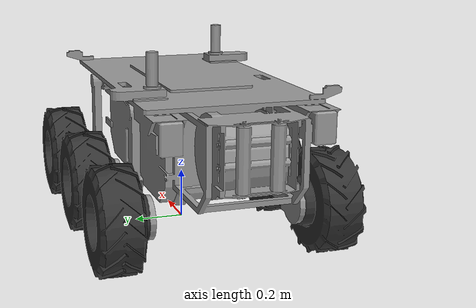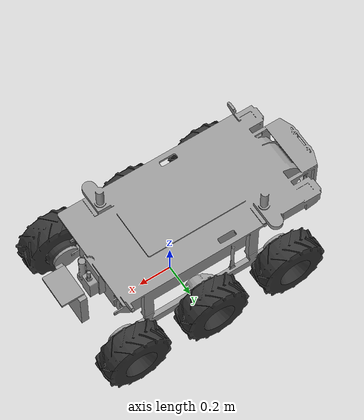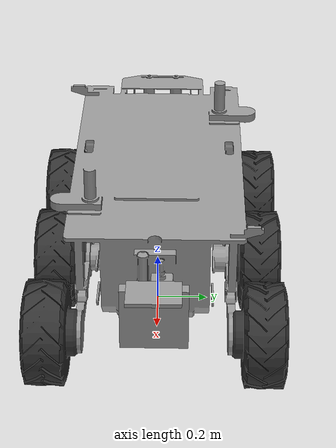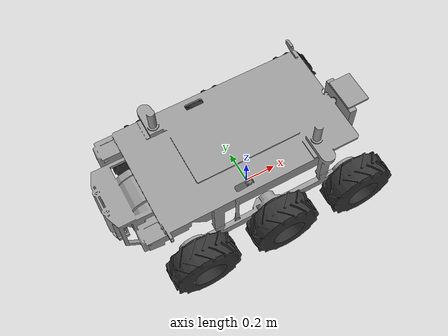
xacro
<?xml version="1.0"?>
<robot xmlns:xacro="http://www.ros.org/wiki/xacro" name="chassis">

<!--collision contact_coefficients in gazebo-->

  <xacro:macro name="box_inertia" params="b_mass b_length b_width b_height">
    <inertial>
      <mass value="${b_mass}"/>
      <inertia ixx="${b_mass*(b_length*b_length+b_height*b_height)/12}" ixy="0.0" ixz="0.0"
               iyy="${b_mass*(b_width*b_width+b_height*b_height)/12}" iyz="0.0"
               izz="${b_mass*(b_length*b_length+b_width*b_width)/12}"/>
    </inertial>
  </xacro:macro>

  <xacro:macro name="cylinder_inertia" params="c_mass c_radius c_height">
    <inertial>
      <origin xyz="0 0 0" />
      <mass value="${c_mass}"/>
      <inertia ixx="${c_mass*(3*c_radius*c_radius+c_height*c_height)/12}" ixy="0.0" ixz="0.0"
               izz="${c_mass*(3*c_radius*c_radius+c_height*c_height)/12}" iyz="0.0"
               iyy="${c_mass*c_radius*c_radius/2}"/>
    </inertial>
  </xacro:macro>

  <xacro:property name="base_link_mass" value="103.5" /><!-- please correct this -->
  <xacro:property name="base_link_length" value="0.9" />
  <xacro:property name="base_link_width" value="0.37" />
  <xacro:property name="base_link_height" value="0.40" />
  <xacro:property name="ctrlbox_link_mass" value="0.23" /><!-- please correct this -->
  <xacro:property name="ctrlbox_link_length" value="0.045" />
  <xacro:property name="ctrlbox_link_width" value="0.25" />
  <xacro:property name="ctrlbox_link_height" value="0.25" />
  <xacro:property name="visionbox_link_mass" value="0.01" />
  <xacro:property name="visionbox_link_length" value="0.14" />
  <xacro:property name="visionbox_link_width" value="0.20" />
  <xacro:property name="visionbox_link_height" value="0.015" />
  <xacro:property name="wheel_mass" value="20.0" /><!-- please correct this -->
  <xacro:property name="wheel_radius" value="0.19" /><!-- please correct this -->
  <xacro:property name="wheel_height" value="0.15" /><!-- please correct this -->
  <xacro:property name="wheelbase" value="1.0" /><!-- please correct this -->
  <xacro:property name="track" value="0.8" />
  <xacro:property name="clearance" value="0.2" />
  <xacro:property name="wheel_vertical_offset" value="0.03282"/>

  <xacro:arg name="laser_rotation" default="false"/>

  <link name="root_link">
  </link>

      <!-- BASE_FOOTPRINT LINK -->

    <joint name="root_footprint_joint" type="fixed">
        <parent link="root_link"/>
        <child link="base_footprint"/>
        <origin xyz="0 0 0" rpy="0 0 0"/>
    </joint>

    <link name="base_footprint">
    </link>

  <joint name="base_to_root" type="fixed">
    <parent link="root_link"/>
    <child link="base_link"/>
    <origin xyz="0 0 ${base_link_height/2+clearance}" rpy="0 0 0"/>
  </joint>

  <xacro:macro name="base_link_geometry">
    <geometry>
      <box size="${base_link_length} ${base_link_width} ${base_link_height}"/>
    </geometry>
    <origin xyz="0 0 0" rpy="0 0 0" />
  </xacro:macro>

  <link name="base_link">
    <visual>
      <geometry>
        <mesh filename="file://$(find real_rover)/meshes/base.stl"/>
      </geometry>
      <material name="grey">
        <color rgba="0.6 0.6 0.6 1"/>
      </material>
      <origin xyz="0 0 0" rpy="0 0 ${pi/2}" />
    </visual>
    <collision>
      <xacro:base_link_geometry />
    </collision>
    <xacro:box_inertia
     b_mass="${base_link_mass}"
     b_length="${base_link_width}"
     b_width="${base_link_length}"
     b_height="${base_link_height}"/>
  </link>
  <gazebo reference="base_link">
    <material>Gazebo/RustySteel</material>
  </gazebo>

  <joint name="ctrlbox_to_base" type="fixed">
    <parent link="base_link"/>
    <child link="ctrlbox_link"/>
    <origin xyz="${base_link_length/2+ctrlbox_link_length/2+0.15} 0 ${ctrlbox_link_height/2+0.035-base_link_height/2}" rpy="0 0 0"/>
  </joint>

  <xacro:macro name="ctrlbox_link_geometry">
    <geometry>
      <box size="${ctrlbox_link_length} ${ctrlbox_link_width} ${ctrlbox_link_height}"/>
    </geometry>
    <origin xyz="0 0 0" rpy="0 0 0" />
  </xacro:macro>

  <link name="ctrlbox_link">
    <visual>
      <xacro:ctrlbox_link_geometry />
      <material name="grey">
        <color rgba="0.6 0.6 0.6 1"/>
      </material>
    </visual>
    <collision>
      <xacro:ctrlbox_link_geometry />
    </collision>
    <xacro:box_inertia
     b_mass="${ctrlbox_link_mass}"
     b_length="${ctrlbox_link_length}"
     b_width="${ctrlbox_link_width}"
     b_height="${ctrlbox_link_height}"/>
  </link>
  <gazebo reference="ctrlbox_link">
    <material>Gazebo/RustySteel</material>
  </gazebo>

  <xacro:macro name="visionbox_link_geometry">
        <geometry>
          <box size="${visionbox_link_length} ${visionbox_link_width} ${visionbox_link_height}"/>
        </geometry>
        <origin xyz="0 0 0" rpy="0 0 0" />
  </xacro:macro>

  <link name="visionbox_link">
    <visual>
      <xacro:visionbox_link_geometry />
      <material name="grey">
        <color rgba="0.6 0.6 0.6 1"/>
      </material>
    </visual>
    <collision>
      <xacro:visionbox_link_geometry />
    </collision>
    <xacro:box_inertia
     b_mass="${visionbox_link_mass}"
     b_length="${visionbox_link_length}"
     b_width="${visionbox_link_width}"
     b_height="${visionbox_link_height}"/>
  </link>
  <gazebo reference="visionbox_link">
    <material>Gazebo/RustySteel</material>
  </gazebo>

  <joint name="visionbox_to_ctrlbox" type="fixed">
    <parent link="ctrlbox_link"/>
    <child link="visionbox_link"/>
    <origin xyz="${visionbox_link_length/2 - ctrlbox_link_length/2}
		            0
		            ${ctrlbox_link_height/2+visionbox_link_height/2}" rpy="0 0 0"/>
  </joint>

  <link name="front_camera_link"></link>

  <joint name="ctrlbox_to_camera_link" type="fixed">
    <parent link="ctrlbox_link"/>
    <child link="front_camera_link"/>
    <origin xyz="${ctrlbox_link_length/2} 0.0 0.026" rpy="0 0 0"/>
  </joint>

  <xacro:macro name="wheel_joint" params="w_name origin_x origin_y origin_z geometry_yaw mu1 mu2">
    <link name="${w_name}_wheel">
      <visual>
        <geometry>
          <mesh filename="file://$(find real_rover)/meshes/wheel.stl"/>
        </geometry>
        <origin xyz="0 0 0" rpy="0 0 ${pi/2+geometry_yaw}"/>
        <material name="black">
          <color rgba="0.2 0.2 0.2 1"/>
        </material>
      </visual>
      <collision>
        <geometry>
          <cylinder length="${wheel_height}" radius="${wheel_radius}"/>
        </geometry>
        <origin xyz="0 0 0" rpy="${pi/2} 0 0"/>
      </collision>
      <xacro:cylinder_inertia
        c_mass="${wheel_mass}"
        c_radius="${wheel_radius}"
        c_height="${wheel_height}"/>
    </link>

    <joint name="base_to_${w_name}_wheel" type="continuous">
      <parent link="base_link"/>
      <child link="${w_name}_wheel"/>
      <axis xyz="0 1 0"/>
      <origin xyz="${origin_x} ${origin_y} ${origin_z}" rpy="0 0 0"/>

    </joint>

    <gazebo reference="${w_name}_wheel">
      <mu1 value="${mu1}"/>
      <mu2 value="${mu2}"/>
      <fdir1 value="0 0 0"/>

      <maxContacts value="1"/>
      <turnGravityOff>false</turnGravityOff>
      <material>Gazebo/DarkGrey</material>
    </gazebo>

  </xacro:macro>

  <xacro:wheel_joint
    w_name="left_forward"
    origin_y="${track/2}"
    origin_x="${wheelbase/2}"
    origin_z="${wheel_radius-base_link_height/2-clearance}"
    geometry_yaw="0"
    mu1="0.5"
    mu2="0.5"/>

  <xacro:wheel_joint
    w_name="left_middle"
    origin_y="${track/2}"
    origin_x="0"
    origin_z="${wheel_radius-base_link_height/2-clearance}"
    geometry_yaw="0"
    mu1="0.5"
    mu2="0.5"/>

  <xacro:wheel_joint
    w_name="left_rear"
    origin_y="${track/2}"
    origin_x="${-wheelbase/2}"
    origin_z="${wheel_radius-base_link_height/2-clearance}"
    geometry_yaw="0"
    mu1="0.5"
    mu2="0.5"/>

  <xacro:wheel_joint
    w_name="right_forward"
    origin_y="${-track/2}"
    origin_x="${wheelbase/2}"
    origin_z="${wheel_radius-base_link_height/2-clearance}"
    geometry_yaw="${pi}"
    mu1="0.5"
    mu2="0.5"/>

  <xacro:wheel_joint
    w_name="right_middle"
    origin_y="${-track/2}"
    origin_x="0"
    origin_z="${wheel_radius-base_link_height/2-clearance}"
    geometry_yaw="${pi}"
    mu1="0.5"
    mu2="0.5"/>

  <xacro:wheel_joint
    w_name="right_rear"
    origin_y="${-track/2}"
    origin_x="${-wheelbase/2}"
    origin_z="${wheel_radius-base_link_height/2-clearance}"
    geometry_yaw="${pi}"
    mu1="0.5"
    mu2="0.5"/>

  <!-- GPS -->
  <link name="gps_link"></link>

  <joint name="gps_joint" type="fixed">
    <parent link="ctrlbox_link"/>
    <child link="gps_link"/>
    <origin xyz="0 -0.1 0.105" rpy="0 0 0"/>
  </joint>

</robot>
